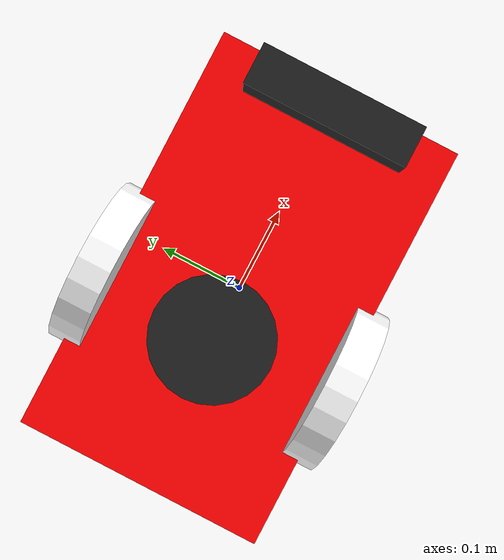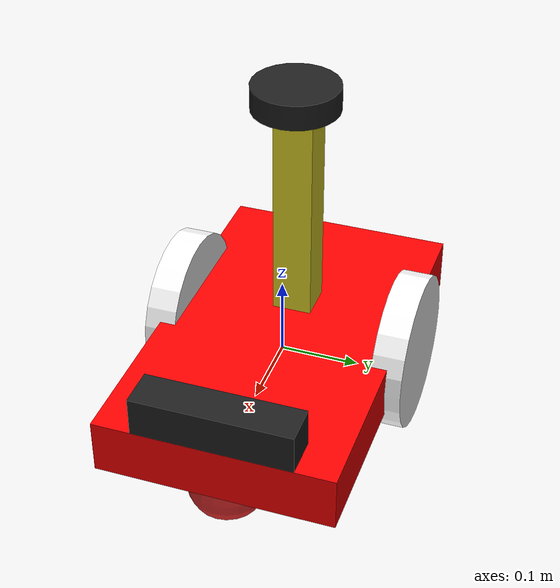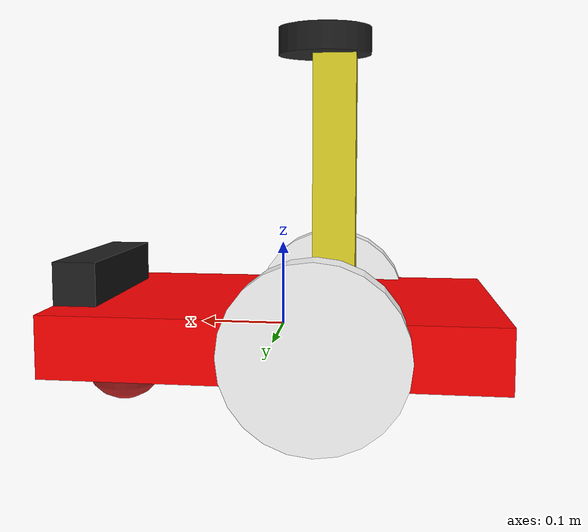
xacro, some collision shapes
<?xml version="1.0"?>
<robot name="car" xmlns:xacro="http://ros.org/wiki/xacro" >

 <material name="blue">
 	<color rgba="1 0 0 1"/>
 </material>

 <material name="white">
	 <color rgba="1 1 1 1"/>
 </material>

 <xacro:property name="m" value="2" />
 <xacro:property name="l1" value="0.5" />
 <xacro:property name="b1" value="0.3" />
 <xacro:property name="h1" value="0.07" />

 <xacro:property name="r2" value="0.05" />

	<link name="chassis">
		<visual>
			<origin rpy="0 0 0" xyz="0 0 0"/>
			<geometry>
				<box size="${l1} ${b1} ${h1}"/>
			</geometry>
			<material name="blue"/>

		</visual>

		<collision name="collision_chassis">
			<geometry>
				<box size="${l1} ${b1} ${h1}"/>
			</geometry>
		</collision>

		<inertial>
			<mass value="${m}"/>
			<origin rpy="0 0 0" xyz="0 0 0"/>
			<inertia ixx="${m*h1*b1/12.0}" ixy="0" ixz="0" iyy="${m*l1*h1/12.0}" iyz="0" izz="${m*l1*b1/12.0}"/>
		</inertial>

		<!-- caster wheel-->
		<visual>
			<origin rpy="0 0 0" xyz="${l1/2-r2} 0 -${r2}"/>
			<geometry>
				<sphere radius="${r2}"/>
			</geometry>
		</visual>

		<collision name="caster_front_collision">
			<origin rpy="0 0 0" xyz="${l1/2-r2} 0 -${r2}"/>
			<geometry>
				<sphere radius="${r2}"/>
			</geometry>
			<surface>
				<friction>
					<ode>
						<mu>0</mu>
						<mu2>0</mu2>
						<slip1>1.0</slip1>
						<slip2>1.0</slip2>
					</ode>
				</friction>
			</surface>
		</collision>
	</link>

 <xacro:property name="l3" value="0.04" />
 <xacro:property name="r3" value="0.1" />
 <xacro:property name="m3" value="0.2" />

	<link name="right_wheel">
		<visual>
			<origin rpy="0 1.5707 1.5707" xyz="0 0 0"/>
			<geometry>
					<cylinder radius="${r3}" length="${l3}" />
			</geometry>
			<material name="white"/>
		</visual>

		<collision name="collision_right_wheel">
		<origin rpy="0 1.5707 1.5707" xyz="0 0 0"/>
			<geometry>
				<cylinder radius="${r3}" length="${l3}" />
			</geometry>
		</collision>

		<inertial>
			<mass value="${m3}"/>
			<origin rpy="0 1.5707 1.5707" xyz="0 0 0"/>
			<inertia ixx="${m3*((3*r3*r3)+(l3*l3))/12.0}" ixy="0" ixz="0" iyy="${m3*((3*r3*r3)+(l3*l3))/12.0}" iyz="0" izz="${(m3*r3*r3)/2.0}"/>
		</inertial>
	</link>

	<joint name="joint_right_wheel_chassis" type="continuous">
		<origin rpy="0 0 0" xyz="-0.05 -${b1/2} 0"/>
		<child link="right_wheel"/>
		<parent link="chassis"/>
		<axis xyz="0 1 0"/>
		<limit effort="10000" velocity="1000"/>
		<joint_properties damping="1.0" friction="1.0"/>
	</joint>

	<link name="left_wheel">
		<visual>
			<origin rpy="0 1.5707 1.5707" xyz="0 0 0"/>
			<geometry>
					<cylinder radius="${r3}" length="${l3}" />
			</geometry>
			<material name="white"/>
		</visual>

		<collision name="collision_left_wheel">
		<origin rpy="0 1.5707 1.5707" xyz="0 0 0"/>
			<geometry>
				<cylinder radius="${r3}" length="${l3}" />
			</geometry>
		</collision>

		<inertial>
			<mass value="${m3}"/>
			<origin rpy="0 1.5707 1.5707" xyz="0 0 0"/>
			<inertia ixx="${m3*((3*r3*r3)+(l3*l3))/12.0}" ixy="0" ixz="0" iyy="${m3*((3*r3*r3)+(l3*l3))/12.0}" iyz="0" izz="${(m3*r3*r3)/2.0}"/>
		</inertial>
	</link>

	<joint name="joint_left_wheel_chassis" type="continuous">
		<origin rpy="0 0 0" xyz="-0.05 ${b1/2} 0"/>
		<child link="left_wheel"/>
		<parent link="chassis"/>
		<axis xyz="0 1 0"/>
		<limit effort="10000" velocity="1000"/>
		<joint_properties damping="1.0" friction="1.0"/>
	</joint>

 <xacro:property name="mk" value="0.1" />
 <xacro:property name="lk" value="0.05" />
 <xacro:property name="bk" value="0.2" />
 <xacro:property name="hk" value="0.05" />

	<!-- Kinect Sensor -->
	<link name="kinect">
		<visual>
			<origin rpy="0 0 0" xyz="0 0 0"/>
			<geometry>
					<box size="${lk} ${bk} ${hk}"/>
			</geometry>
		</visual>

		<collision name="collision_kinect">
			<geometry>
					<box size="${lk} ${bk} ${hk}"/>
			</geometry>
		</collision>

		<inertial>
			<mass value="${mk}"/>
			<origin rpy="0 0 0" xyz="0 0 0"/>
			<inertia ixx="${mk*hk*bk/12.0}" ixy="0" ixz="0" iyy="${mk*lk*hk/12.0}" iyz="0" izz="${mk*lk*bk/12.0}"/>
		</inertial>
	</link>

	<joint name="joint_kinect_chassis" type="fixed">
		<origin rpy="0 0 0" xyz="${l1/2-lk/2} 0 ${h1/2+hk/2}"/>
		<child link="kinect"/>
		<parent link="chassis"/>
	</joint>

	<link name="kinect_link" />

	<joint name="joint_kinect_link" type="fixed">
		<origin rpy="-1.5707 0 -1.5707" xyz="${l1/2} 0 ${h1/2+hk/2}"/>
		<child link="kinect_link"/>
		<parent link="chassis"/>
	</joint>

    <joint name="lidar_stand_joint" type="fixed">
    	<parent link="chassis"/>
    	<child link="lidar_stand"/>
    	<origin xyz="-0.032 0 0.172" rpy="0 0 0"/>
    </joint>

	<link name="lidar_stand">
		<visual>
			<origin rpy="0 0 0" xyz="-0.03 0 0"/>
			<geometry>
					<box size="0.05 0.05 0.3"/>
			</geometry>
		</visual>

		<collision name="collision_kinect">
			<geometry>
					<box size="0.05 0.05 0.3"/>
			</geometry>
		</collision>

		<inertial>
			<mass value="${mk}"/>
			<origin rpy="0 0 0" xyz="0 0 0"/>
			<inertia ixx="${mk*hk*bk/12.0}" ixy="0" ixz="0" iyy="${mk*lk*hk/12.0}" iyz="0" izz="${mk*lk*bk/12.0}"/>
		</inertial>
	</link>

  <joint name="scan_joint" type="fixed">
    <parent link="lidar_stand"/>
    <child link="base_scan"/>
    <origin xyz="-0.032 0 0.172" rpy="0 0 0"/>
  </joint>

  <link name="base_scan">
    <visual>
      <origin xyz="0 0 0.0" rpy="0 0 0"/>
      <geometry>
        <mesh filename="package://turtlebot3_description/meshes/sensors/lds.stl" scale="0.001 0.001 0.001"/>
      </geometry>
      <material name="dark"/>
    </visual>

    <collision>
      <origin xyz="0.015 0 -0.0065" rpy="0 0 0"/>
      <geometry>
        <cylinder length="0.0315" radius="0.055"/>
      </geometry>
    </collision>

    <inertial>
      <mass value="0.114" />
      <origin xyz="0 0 0" />
      <inertia ixx="0.001" ixy="0.0" ixz="0.0"
               iyy="0.001" iyz="0.0"
               izz="0.001" />
    </inertial>
  </link>

<xacro:include filename="$(find smart_wheelchair)/urdf/gazebo_plugins.urdf.xacro" />

</robot>
